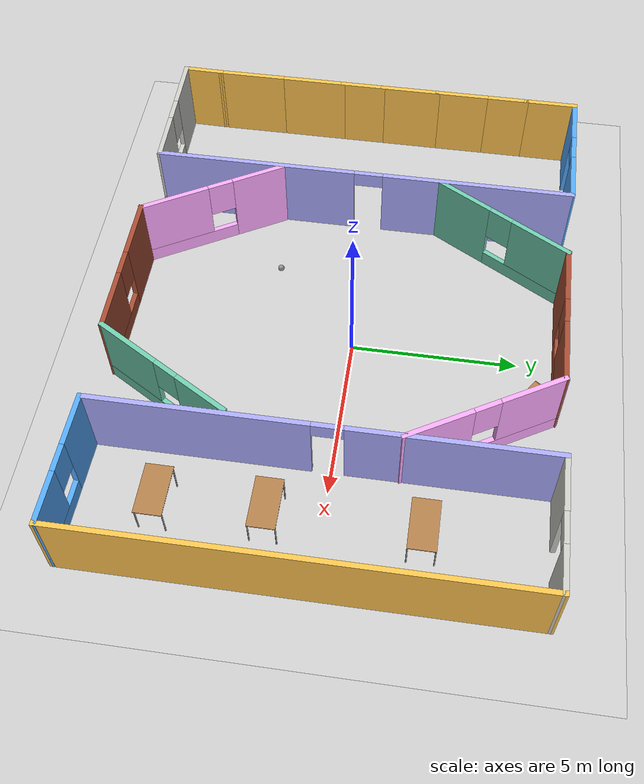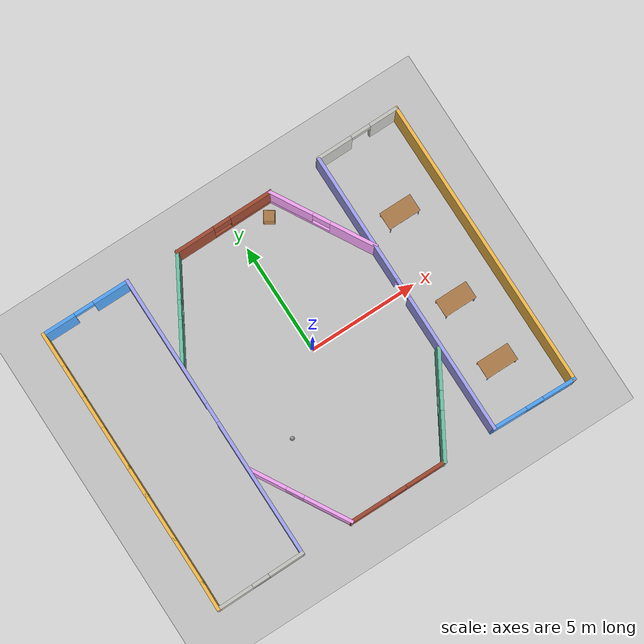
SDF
<sdf version="1.6">
 <world name="default">
  <light name="sun" type="directional">
   <pose>0 0 10 0 -0 0</pose>
   <diffuse>0.8 0.8 0.8 1</diffuse>
   <specular>0.2 0.2 0.2 1</specular>
   <attenuation>
    <range>1000</range>
    <constant>0.9</constant>
    <linear>0.01</linear>
    <quadratic>0.001</quadratic>
   </attenuation>
   <direction>-0.5 0.1 -0.9</direction>
  </light>
  <model name="ground_plane">
   <static>1</static>
   <link name="link">
    <collision name="collision">
     <geometry><plane><normal>0 0 1</normal><size>100 100</size></plane></geometry>
     <surface>
      <contact><collide_bitmask>65535</collide_bitmask></contact>
      <friction><ode><mu>100</mu><mu2>50</mu2></ode></friction>
     </surface>
    </collision>
    <visual name="visual">
     <cast_shadows>0</cast_shadows>
     <geometry><plane><normal>0 0 1</normal><size>100 100</size></plane></geometry>
     <material>
      <script><uri>file://media/materials/scripts/gazebo.material</uri><name>Gazebo/Grey</name></script>
     </material>
    </visual>
   </link>
  </model>
  <gravity>0 0 -9.8</gravity>
  <magnetic_field>6e-06 2.3e-05 -4.2e-05</magnetic_field>
  <atmosphere type="adiabatic"/>
  <physics name="default_physics" default="0" type="ode">
   <max_step_size>0.001</max_step_size>
   <real_time_factor>1</real_time_factor>
   <real_time_update_rate>1000</real_time_update_rate>
  </physics>
  <scene><ambient>0.4 0.4 0.4 1</ambient><background>0.7 0.7 0.7 1</background><shadows>1</shadows></scene>
  <spherical_coordinates>
   <surface_model>EARTH_WGS84</surface_model>
   <latitude_deg>0</latitude_deg>
   <longitude_deg>0</longitude_deg>
   <elevation>0</elevation>
   <heading_deg>0</heading_deg>
  </spherical_coordinates>
  <model name="SLAM_buildilng">
   <pose>-0.438327 -0.340271 0 0 -0 0</pose>
   <link name="Wall_10">
    <collision name="Wall_10_Collision">
     <geometry><box><size>2.25 0.15 2.5</size></box></geometry>
     <pose>0 0 1.25 0 -0 0</pose>
    </collision>
    <visual name="Wall_10_Visual">
     <pose>0 0 1.25 0 -0 0</pose>
     <geometry><box><size>2.25 0.15 2.5</size></box></geometry>
     <material>
      <script><uri>file://media/materials/scripts/gazebo.material</uri><name>Gazebo/Grey</name></script>
      <ambient>1 0.764706 0.305882 1</ambient>
     </material>
     <meta><layer>0</layer></meta>
    </visual>
    <pose>-8.53307 -4.34416 0 0 0 -1.5708</pose>
   </link>
   <link name="Wall_12">
    <collision name="Wall_12_Collision">
     <geometry><box><size>1.36065 0.15 2.5</size></box></geometry>
     <pose>0 0 1.25 0 -0 0</pose>
    </collision>
    <visual name="Wall_12_Visual">
     <pose>0 0 1.25 0 -0 0</pose>
     <geometry><box><size>1.36065 0.15 2.5</size></box></geometry>
     <material>
      <script><uri>file://media/materials/scripts/gazebo.material</uri><name>Gazebo/Grey</name></script>
      <ambient>1 0.764706 0.305882 1</ambient>
     </material>
     <meta><layer>0</layer></meta>
    </visual>
    <pose>-8.5447 -5.99938 0 0 0 -1.59001</pose>
   </link>
   <link name="Wall_14">
    <collision name="Wall_14_Collision">
     <geometry><box><size>13.3606 0.15 2.5</size></box></geometry>
     <pose>0 0 1.25 0 -0 0</pose>
    </collision>
    <visual name="Wall_14_Visual">
     <pose>0 0 1.25 0 -0 0</pose>
     <geometry><box><size>13.3606 0.15 2.5</size></box></geometry>
     <material>
      <script><uri>file://media/materials/scripts/gazebo.material</uri><name>Gazebo/Grey</name></script>
      <ambient>1 0.764706 0.305882 1</ambient>
     </material>
     <meta><layer>0</layer></meta>
    </visual>
    <pose>8.5501 0.000623 0 0 -0 1.5717</pose>
   </link>
   <link name="Wall_17">
    <pose>-4.49653 -0.000985 0 0 0 -1.5708</pose>
    <visual name="Wall_17_Visual_0">
     <pose>-3.62874 0 1.25 0 -0 0</pose>
     <geometry><box><size>5.99253 0.15 2.5</size></box></geometry>
     <material>
      <script><uri>file://media/materials/scripts/gazebo.material</uri><name>Gazebo/Grey</name></script>
      <ambient>0.666667 0.666667 1 1</ambient>
     </material>
     <meta><layer>0</layer></meta>
    </visual>
    <collision name="Wall_17_Collision_0">
     <geometry><box><size>5.99253 0.15 2.5</size></box></geometry>
     <pose>-3.62874 0 1.25 0 -0 0</pose>
    </collision>
    <visual name="Wall_17_Visual_1">
     <pose>3.44626 0 1.25 0 -0 0</pose>
     <geometry><box><size>6.35747 0.15 2.5</size></box></geometry>
     <material>
      <script><uri>file://media/materials/scripts/gazebo.material</uri><name>Gazebo/Grey</name></script>
      <ambient>0.666667 0.666667 1 1</ambient>
     </material>
     <meta><layer>0</layer></meta>
    </visual>
    <collision name="Wall_17_Collision_1">
     <geometry><box><size>6.35747 0.15 2.5</size></box></geometry>
     <pose>3.44626 0 1.25 0 -0 0</pose>
    </collision>
    <visual name="Wall_17_Visual_2">
     <pose>-0.182474 0 2.25 0 -0 0</pose>
     <geometry><box><size>0.9 0.15 0.5</size></box></geometry>
     <material>
      <script><uri>file://media/materials/scripts/gazebo.material</uri><name>Gazebo/Grey</name></script>
      <ambient>0.666667 0.666667 1 1</ambient>
     </material>
     <meta><layer>0</layer></meta>
    </visual>
    <collision name="Wall_17_Collision_2">
     <geometry><box><size>0.9 0.15 0.5</size></box></geometry>
     <pose>-0.182474 0 2.25 0 -0 0</pose>
    </collision>
   </link>
   <link name="Wall_22">
    <pose>4.75524 0.032724 0 0 0 -1.5708</pose>
    <visual name="Wall_22_Visual_0">
     <pose>-3.64677 0 1.25 0 -0 0</pose>
     <geometry><box><size>5.95645 0.15 2.5</size></box></geometry>
     <material>
      <script><uri>file://media/materials/scripts/gazebo.material</uri><name>Gazebo/Grey</name></script>
      <ambient>0.666667 0.666667 1 1</ambient>
     </material>
     <meta><layer>0</layer></meta>
    </visual>
    <collision name="Wall_22_Collision_0">
     <geometry><box><size>5.95645 0.15 2.5</size></box></geometry>
     <pose>-3.64677 0 1.25 0 -0 0</pose>
    </collision>
    <visual name="Wall_22_Visual_1">
     <pose>3.42822 0 1.25 0 -0 0</pose>
     <geometry><box><size>6.39355 0.15 2.5</size></box></geometry>
     <material>
      <script><uri>file://media/materials/scripts/gazebo.material</uri><name>Gazebo/Grey</name></script>
      <ambient>0.666667 0.666667 1 1</ambient>
     </material>
     <meta><layer>0</layer></meta>
    </visual>
    <collision name="Wall_22_Collision_1">
     <geometry><box><size>6.39355 0.15 2.5</size></box></geometry>
     <pose>3.42822 0 1.25 0 -0 0</pose>
    </collision>
    <visual name="Wall_22_Visual_2">
     <pose>-0.21855 0 2.25 0 -0 0</pose>
     <geometry><box><size>0.9 0.15 0.5</size></box></geometry>
     <material>
      <script><uri>file://media/materials/scripts/gazebo.material</uri><name>Gazebo/Grey</name></script>
      <ambient>0.666667 0.666667 1 1</ambient>
     </material>
     <meta><layer>0</layer></meta>
    </visual>
    <collision name="Wall_22_Collision_2">
     <geometry><box><size>0.9 0.15 0.5</size></box></geometry>
     <pose>-0.21855 0 2.25 0 -0 0</pose>
    </collision>
   </link>
   <link name="Wall_29">
    <pose>-3.30649 4.48048 0 0 -0 1.0472</pose>
    <visual name="Wall_29_Visual_0">
     <pose>-1.42297 0 1.25 0 -0 0</pose>
     <geometry><box><size>1.90406 0.15 2.5</size></box></geometry>
     <material>
      <script><uri>file://media/materials/scripts/gazebo.material</uri><name>Gazebo/Grey</name></script>
      <ambient>0.435294 0.796078 0.67451 1</ambient>
     </material>
     <meta><layer>0</layer></meta>
    </visual>
    <collision name="Wall_29_Collision_0">
     <geometry><box><size>1.90406 0.15 2.5</size></box></geometry>
     <pose>-1.42297 0 1.25 0 -0 0</pose>
    </collision>
    <visual name="Wall_29_Visual_1">
     <pose>0.952028 0 0.25 0 -0 0</pose>
     <geometry><box><size>2.84594 0.15 0.5</size></box></geometry>
     <material>
      <script><uri>file://media/materials/scripts/gazebo.material</uri><name>Gazebo/Grey</name></script>
      <ambient>0.435294 0.796078 0.67451 1</ambient>
     </material>
     <meta><layer>0</layer></meta>
    </visual>
    <collision name="Wall_29_Collision_1">
     <geometry><box><size>2.84594 0.15 0.5</size></box></geometry>
     <pose>0.952028 0 0.25 0 -0 0</pose>
    </collision>
    <visual name="Wall_29_Visual_2">
     <pose>1.35203 0 1.5 0 -0 0</pose>
     <geometry><box><size>2.04595 0.15 2</size></box></geometry>
     <material>
      <script><uri>file://media/materials/scripts/gazebo.material</uri><name>Gazebo/Grey</name></script>
      <ambient>0.435294 0.796078 0.67451 1</ambient>
     </material>
     <meta><layer>0</layer></meta>
    </visual>
    <collision name="Wall_29_Collision_2">
     <geometry><box><size>2.04595 0.15 2</size></box></geometry>
     <pose>1.35203 0 1.5 0 -0 0</pose>
    </collision>
    <visual name="Wall_29_Visual_3">
     <pose>-0.070945 0 1.9 0 -0 0</pose>
     <geometry><box><size>0.8 0.15 1.2</size></box></geometry>
     <material>
      <script><uri>file://media/materials/scripts/gazebo.material</uri><name>Gazebo/Grey</name></script>
      <ambient>0.435294 0.796078 0.67451 1</ambient>
     </material>
     <meta><layer>0</layer></meta>
    </visual>
    <collision name="Wall_29_Collision_3">
     <geometry><box><size>0.8 0.15 1.2</size></box></geometry>
     <pose>-0.070945 0 1.9 0 -0 0</pose>
    </collision>
   </link>
   <link name="Wall_3">
    <collision name="Wall_3_Collision">
     <geometry><box><size>1.75 0.15 2.5</size></box></geometry>
     <pose>0 0 1.25 0 -0 0</pose>
    </collision>
    <visual name="Wall_3_Visual">
     <pose>0 0 1.25 0 -0 0</pose>
     <geometry><box><size>1.75 0.15 2.5</size></box></geometry>
     <material>
      <script><uri>file://media/materials/scripts/gazebo.material</uri><name>Gazebo/Grey</name></script>
      <ambient>1 0.764706 0.305882 1</ambient>
     </material>
     <meta><layer>0</layer></meta>
    </visual>
    <pose>-8.53307 5.75584 0 0 0 -1.5708</pose>
   </link>
   <link name="Wall_31">
    <pose>3.55601 4.39549 0 0 -0 2.0944</pose>
    <visual name="Wall_31_Visual_0">
     <pose>-1.42474 0 1.25 0 -0 0</pose>
     <geometry><box><size>2.15052 0.15 2.5</size></box></geometry>
     <material>
      <script><uri>file://media/materials/scripts/gazebo.material</uri><name>Gazebo/Grey</name></script>
      <ambient>1 0.666667 1 1</ambient>
     </material>
     <meta><layer>0</layer></meta>
    </visual>
    <collision name="Wall_31_Collision_0">
     <geometry><box><size>2.15052 0.15 2.5</size></box></geometry>
     <pose>-1.42474 0 1.25 0 -0 0</pose>
    </collision>
    <visual name="Wall_31_Visual_1">
     <pose>1.07526 0 0.25 0 -0 0</pose>
     <geometry><box><size>2.84948 0.15 0.5</size></box></geometry>
     <material>
      <script><uri>file://media/materials/scripts/gazebo.material</uri><name>Gazebo/Grey</name></script>
      <ambient>1 0.666667 1 1</ambient>
     </material>
     <meta><layer>0</layer></meta>
    </visual>
    <collision name="Wall_31_Collision_1">
     <geometry><box><size>2.84948 0.15 0.5</size></box></geometry>
     <pose>1.07526 0 0.25 0 -0 0</pose>
    </collision>
    <visual name="Wall_31_Visual_2">
     <pose>1.47526 0 1.5 0 -0 0</pose>
     <geometry><box><size>2.04948 0.15 2</size></box></geometry>
     <material>
      <script><uri>file://media/materials/scripts/gazebo.material</uri><name>Gazebo/Grey</name></script>
      <ambient>1 0.666667 1 1</ambient>
     </material>
     <meta><layer>0</layer></meta>
    </visual>
    <collision name="Wall_31_Collision_2">
     <geometry><box><size>2.04948 0.15 2</size></box></geometry>
     <pose>1.47526 0 1.5 0 -0 0</pose>
    </collision>
    <visual name="Wall_31_Visual_3">
     <pose>0.050521 0 1.9 0 -0 0</pose>
     <geometry><box><size>0.8 0.15 1.2</size></box></geometry>
     <material>
      <script><uri>file://media/materials/scripts/gazebo.material</uri><name>Gazebo/Grey</name></script>
      <ambient>1 0.666667 1 1</ambient>
     </material>
     <meta><layer>0</layer></meta>
    </visual>
    <collision name="Wall_31_Collision_3">
     <geometry><box><size>0.8 0.15 1.2</size></box></geometry>
     <pose>0.050521 0 1.9 0 -0 0</pose>
    </collision>
   </link>
   <link name="Wall_35">
    <pose>-3.28323 -4.57435 0 0 0 -1.0472</pose>
    <visual name="Wall_35_Visual_0">
     <pose>-1.51625 0 1.25 0 -0 0</pose>
     <geometry><box><size>1.7175 0.15 2.5</size></box></geometry>
     <material>
      <script><uri>file://media/materials/scripts/gazebo.material</uri><name>Gazebo/Grey</name></script>
      <ambient>1 0.666667 1 1</ambient>
     </material>
     <meta><layer>0</layer></meta>
    </visual>
    <collision name="Wall_35_Collision_0">
     <geometry><box><size>1.7175 0.15 2.5</size></box></geometry>
     <pose>-1.51625 0 1.25 0 -0 0</pose>
    </collision>
    <visual name="Wall_35_Visual_1">
     <pose>0.858748 0 0.25 0 -0 0</pose>
     <geometry><box><size>3.0325 0.15 0.5</size></box></geometry>
     <material>
      <script><uri>file://media/materials/scripts/gazebo.material</uri><name>Gazebo/Grey</name></script>
      <ambient>1 0.666667 1 1</ambient>
     </material>
     <meta><layer>0</layer></meta>
    </visual>
    <collision name="Wall_35_Collision_1">
     <geometry><box><size>3.0325 0.15 0.5</size></box></geometry>
     <pose>0.858748 0 0.25 0 -0 0</pose>
    </collision>
    <visual name="Wall_35_Visual_2">
     <pose>1.25875 0 1.5 0 -0 0</pose>
     <geometry><box><size>2.2325 0.15 2</size></box></geometry>
     <material>
      <script><uri>file://media/materials/scripts/gazebo.material</uri><name>Gazebo/Grey</name></script>
      <ambient>1 0.666667 1 1</ambient>
     </material>
     <meta><layer>0</layer></meta>
    </visual>
    <collision name="Wall_35_Collision_2">
     <geometry><box><size>2.2325 0.15 2</size></box></geometry>
     <pose>1.25875 0 1.5 0 -0 0</pose>
    </collision>
    <visual name="Wall_35_Visual_3">
     <pose>-0.257504 0 1.9 0 -0 0</pose>
     <geometry><box><size>0.8 0.15 1.2</size></box></geometry>
     <material>
      <script><uri>file://media/materials/scripts/gazebo.material</uri><name>Gazebo/Grey</name></script>
      <ambient>1 0.666667 1 1</ambient>
     </material>
     <meta><layer>0</layer></meta>
    </visual>
    <collision name="Wall_35_Collision_3">
     <geometry><box><size>0.8 0.15 1.2</size></box></geometry>
     <pose>-0.257504 0 1.9 0 -0 0</pose>
    </collision>
   </link>
   <link name="Wall_38">
    <pose>3.49351 -4.57435 0 0 0 -2.0944</pose>
    <visual name="Wall_38_Visual_0">
     <pose>-1.47162 0 1.25 0 -0 0</pose>
     <geometry><box><size>1.80677 0.15 2.5</size></box></geometry>
     <material>
      <script><uri>file://media/materials/scripts/gazebo.material</uri><name>Gazebo/Grey</name></script>
      <ambient>0.435294 0.796078 0.67451 1</ambient>
     </material>
     <meta><layer>0</layer></meta>
    </visual>
    <collision name="Wall_38_Collision_0">
     <geometry><box><size>1.80677 0.15 2.5</size></box></geometry>
     <pose>-1.47162 0 1.25 0 -0 0</pose>
    </collision>
    <visual name="Wall_38_Visual_1">
     <pose>0.903383 0 0.25 0 -0 0</pose>
     <geometry><box><size>2.94323 0.15 0.5</size></box></geometry>
     <material>
      <script><uri>file://media/materials/scripts/gazebo.material</uri><name>Gazebo/Grey</name></script>
      <ambient>0.435294 0.796078 0.67451 1</ambient>
     </material>
     <meta><layer>0</layer></meta>
    </visual>
    <collision name="Wall_38_Collision_1">
     <geometry><box><size>2.94323 0.15 0.5</size></box></geometry>
     <pose>0.903383 0 0.25 0 -0 0</pose>
    </collision>
    <visual name="Wall_38_Visual_2">
     <pose>1.30338 0 1.5 0 -0 0</pose>
     <geometry><box><size>2.14323 0.15 2</size></box></geometry>
     <material>
      <script><uri>file://media/materials/scripts/gazebo.material</uri><name>Gazebo/Grey</name></script>
      <ambient>0.435294 0.796078 0.67451 1</ambient>
     </material>
     <meta><layer>0</layer></meta>
    </visual>
    <collision name="Wall_38_Collision_2">
     <geometry><box><size>2.14323 0.15 2</size></box></geometry>
     <pose>1.30338 0 1.5 0 -0 0</pose>
    </collision>
    <visual name="Wall_38_Visual_3">
     <pose>-0.168233 0 1.9 0 -0 0</pose>
     <geometry><box><size>0.8 0.15 1.2</size></box></geometry>
     <material>
      <script><uri>file://media/materials/scripts/gazebo.material</uri><name>Gazebo/Grey</name></script>
      <ambient>0.435294 0.796078 0.67451 1</ambient>
     </material>
     <meta><layer>0</layer></meta>
    </visual>
    <collision name="Wall_38_Collision_3">
     <geometry><box><size>0.8 0.15 1.2</size></box></geometry>
     <pose>-0.168233 0 1.9 0 -0 0</pose>
    </collision>
   </link>
   <link name="Wall_4">
    <collision name="Wall_4_Collision">
     <geometry><box><size>1.5 0.15 2.5</size></box></geometry>
     <pose>0 0 1.25 0 -0 0</pose>
    </collision>
    <visual name="Wall_4_Visual">
     <pose>0 0 1.25 0 -0 0</pose>
     <geometry><box><size>1.5 0.15 2.5</size></box></geometry>
     <material>
      <script><uri>file://media/materials/scripts/gazebo.material</uri><name>Gazebo/Grey</name></script>
      <ambient>1 0.764706 0.305882 1</ambient>
     </material>
     <meta><layer>0</layer></meta>
    </visual>
    <pose>-8.53307 4.28084 0 0 0 -1.5708</pose>
   </link>
   <link name="Wall_41">
    <pose>0.093507 6.48397 0 0 -0 0.005169</pose>
    <visual name="Wall_41_Visual_0">
     <pose>-1.40673 0 1.25 0 -0 0</pose>
     <geometry><box><size>1.8366 0.15 2.5</size></box></geometry>
     <material>
      <script><uri>file://media/materials/scripts/gazebo.material</uri><name>Gazebo/Bricks</name></script>
      <ambient>1 1 1 1</ambient>
     </material>
     <meta><layer>0</layer></meta>
    </visual>
    <collision name="Wall_41_Collision_0">
     <geometry><box><size>1.8366 0.15 2.5</size></box></geometry>
     <pose>-1.40673 0 1.25 0 -0 0</pose>
    </collision>
    <visual name="Wall_41_Visual_1">
     <pose>0.918299 0 0.25 0 -0 0</pose>
     <geometry><box><size>2.81346 0.15 0.5</size></box></geometry>
     <material>
      <script><uri>file://media/materials/scripts/gazebo.material</uri><name>Gazebo/Bricks</name></script>
      <ambient>1 1 1 1</ambient>
     </material>
     <meta><layer>0</layer></meta>
    </visual>
    <collision name="Wall_41_Collision_1">
     <geometry><box><size>2.81346 0.15 0.5</size></box></geometry>
     <pose>0.918299 0 0.25 0 -0 0</pose>
    </collision>
    <visual name="Wall_41_Visual_2">
     <pose>1.3183 0 1.5 0 -0 0</pose>
     <geometry><box><size>2.01346 0.15 2</size></box></geometry>
     <material>
      <script><uri>file://media/materials/scripts/gazebo.material</uri><name>Gazebo/Bricks</name></script>
      <ambient>1 1 1 1</ambient>
     </material>
     <meta><layer>0</layer></meta>
    </visual>
    <collision name="Wall_41_Collision_2">
     <geometry><box><size>2.01346 0.15 2</size></box></geometry>
     <pose>1.3183 0 1.5 0 -0 0</pose>
    </collision>
    <visual name="Wall_41_Visual_3">
     <pose>-0.088431 0 1.9 0 -0 0</pose>
     <geometry><box><size>0.8 0.15 1.2</size></box></geometry>
     <material>
      <script><uri>file://media/materials/scripts/gazebo.material</uri><name>Gazebo/Bricks</name></script>
      <ambient>1 1 1 1</ambient>
     </material>
     <meta><layer>0</layer></meta>
    </visual>
    <collision name="Wall_41_Collision_3">
     <geometry><box><size>0.8 0.15 1.2</size></box></geometry>
     <pose>-0.088431 0 1.9 0 -0 0</pose>
    </collision>
   </link>
   <link name="Wall_43">
    <pose>-6.5148 6.55243 0 0 0 -0.00169</pose>
    <visual name="Wall_43_Visual_0">
     <pose>-1.30729 0 1.25 0 -0 0</pose>
     <geometry><box><size>1.57196 0.15 2.5</size></box></geometry>
     <material>
      <script><uri>file://media/materials/scripts/gazebo.material</uri><name>Gazebo/Grey</name></script>
      <ambient>0.333333 0.666667 1 1</ambient>
     </material>
     <meta><layer>0</layer></meta>
    </visual>
    <collision name="Wall_43_Collision_0">
     <geometry><box><size>1.57196 0.15 2.5</size></box></geometry>
     <pose>-1.30729 0 1.25 0 -0 0</pose>
    </collision>
    <visual name="Wall_43_Visual_1">
     <pose>1.23598 0 1.25 0 -0 0</pose>
     <geometry><box><size>1.71458 0.15 2.5</size></box></geometry>
     <material>
      <script><uri>file://media/materials/scripts/gazebo.material</uri><name>Gazebo/Grey</name></script>
      <ambient>0.333333 0.666667 1 1</ambient>
     </material>
     <meta><layer>0</layer></meta>
    </visual>
    <collision name="Wall_43_Collision_1">
     <geometry><box><size>1.71458 0.15 2.5</size></box></geometry>
     <pose>1.23598 0 1.25 0 -0 0</pose>
    </collision>
    <visual name="Wall_43_Visual_2">
     <pose>-0.07131 0 2.25 0 -0 0</pose>
     <geometry><box><size>0.9 0.15 0.5</size></box></geometry>
     <material>
      <script><uri>file://media/materials/scripts/gazebo.material</uri><name>Gazebo/Grey</name></script>
      <ambient>0.333333 0.666667 1 1</ambient>
     </material>
     <meta><layer>0</layer></meta>
    </visual>
    <collision name="Wall_43_Collision_2">
     <geometry><box><size>0.9 0.15 0.5</size></box></geometry>
     <pose>-0.07131 0 2.25 0 -0 0</pose>
    </collision>
   </link>
   <link name="Wall_45">
    <pose>6.64969 6.59428 0 0 -0 0.0061</pose>
    <visual name="Wall_45_Visual_0">
     <pose>-1.13516 0 1.25 0 -0 0</pose>
     <geometry><box><size>1.66866 0.15 2.5</size></box></geometry>
     <material>
      <script><uri>file://media/materials/scripts/gazebo.material</uri><name>Gazebo/CeilingTiled</name></script>
      <ambient>1 1 1 1</ambient>
     </material>
     <meta><layer>0</layer></meta>
    </visual>
    <collision name="Wall_45_Collision_0">
     <geometry><box><size>1.66866 0.15 2.5</size></box></geometry>
     <pose>-1.13516 0 1.25 0 -0 0</pose>
    </collision>
    <visual name="Wall_45_Visual_1">
     <pose>1.28433 0 1.25 0 -0 0</pose>
     <geometry><box><size>1.37031 0.15 2.5</size></box></geometry>
     <material>
      <script><uri>file://media/materials/scripts/gazebo.material</uri><name>Gazebo/CeilingTiled</name></script>
      <ambient>1 1 1 1</ambient>
     </material>
     <meta><layer>0</layer></meta>
    </visual>
    <collision name="Wall_45_Collision_1">
     <geometry><box><size>1.37031 0.15 2.5</size></box></geometry>
     <pose>1.28433 0 1.25 0 -0 0</pose>
    </collision>
    <visual name="Wall_45_Visual_2">
     <pose>0.149173 0 2.25 0 -0 0</pose>
     <geometry><box><size>0.9 0.15 0.5</size></box></geometry>
     <material>
      <script><uri>file://media/materials/scripts/gazebo.material</uri><name>Gazebo/CeilingTiled</name></script>
      <ambient>1 1 1 1</ambient>
     </material>
     <meta><layer>0</layer></meta>
    </visual>
    <collision name="Wall_45_Collision_2">
     <geometry><box><size>0.9 0.15 0.5</size></box></geometry>
     <pose>0.149173 0 2.25 0 -0 0</pose>
    </collision>
   </link>
   <link name="Wall_47">
    <pose>0.105138 -6.5662 0 0 -0 0</pose>
    <visual name="Wall_47_Visual_0">
     <pose>-1.36608 0 1.25 0 -0 0</pose>
     <geometry><box><size>1.89457 0.15 2.5</size></box></geometry>
     <material>
      <script><uri>file://media/materials/scripts/gazebo.material</uri><name>Gazebo/Bricks</name></script>
      <ambient>1 1 1 1</ambient>
     </material>
     <meta><layer>0</layer></meta>
    </visual>
    <collision name="Wall_47_Collision_0">
     <geometry><box><size>1.89457 0.15 2.5</size></box></geometry>
     <pose>-1.36608 0 1.25 0 -0 0</pose>
    </collision>
    <visual name="Wall_47_Visual_1">
     <pose>0.947284 0 0.25 0 -0 0</pose>
     <geometry><box><size>2.73217 0.15 0.5</size></box></geometry>
     <material>
      <script><uri>file://media/materials/scripts/gazebo.material</uri><name>Gazebo/Bricks</name></script>
      <ambient>1 1 1 1</ambient>
     </material>
     <meta><layer>0</layer></meta>
    </visual>
    <collision name="Wall_47_Collision_1">
     <geometry><box><size>2.73217 0.15 0.5</size></box></geometry>
     <pose>0.947284 0 0.25 0 -0 0</pose>
    </collision>
    <visual name="Wall_47_Visual_2">
     <pose>1.34728 0 1.5 0 -0 0</pose>
     <geometry><box><size>1.93217 0.15 2</size></box></geometry>
     <material>
      <script><uri>file://media/materials/scripts/gazebo.material</uri><name>Gazebo/Bricks</name></script>
      <ambient>1 1 1 1</ambient>
     </material>
     <meta><layer>0</layer></meta>
    </visual>
    <collision name="Wall_47_Collision_2">
     <geometry><box><size>1.93217 0.15 2</size></box></geometry>
     <pose>1.34728 0 1.5 0 -0 0</pose>
    </collision>
    <visual name="Wall_47_Visual_3">
     <pose>-0.018801 0 1.9 0 -0 0</pose>
     <geometry><box><size>0.8 0.15 1.2</size></box></geometry>
     <material>
      <script><uri>file://media/materials/scripts/gazebo.material</uri><name>Gazebo/Bricks</name></script>
      <ambient>1 1 1 1</ambient>
     </material>
     <meta><layer>0</layer></meta>
    </visual>
    <collision name="Wall_47_Collision_3">
     <geometry><box><size>0.8 0.15 1.2</size></box></geometry>
     <pose>-0.018801 0 1.9 0 -0 0</pose>
    </collision>
   </link>
   <link name="Wall_49">
    <pose>-6.52643 -6.57779 0 0 -0 0.013203</pose>
    <visual name="Wall_49_Visual_0">
     <pose>-1.24125 0 1.25 0 -0 0</pose>
     <geometry><box><size>1.72766 0.15 2.5</size></box></geometry>
     <material>
      <script><uri>file://media/materials/scripts/gazebo.material</uri><name>Gazebo/CeilingTiled</name></script>
      <ambient>1 1 1 1</ambient>
     </material>
     <meta><layer>0</layer></meta>
    </visual>
    <collision name="Wall_49_Collision_0">
     <geometry><box><size>1.72766 0.15 2.5</size></box></geometry>
     <pose>-1.24125 0 1.25 0 -0 0</pose>
    </collision>
    <visual name="Wall_49_Visual_1">
     <pose>0.863832 0 0.25 0 -0 0</pose>
     <geometry><box><size>2.48249 0.15 0.5</size></box></geometry>
     <material>
      <script><uri>file://media/materials/scripts/gazebo.material</uri><name>Gazebo/CeilingTiled</name></script>
      <ambient>1 1 1 1</ambient>
     </material>
     <meta><layer>0</layer></meta>
    </visual>
    <collision name="Wall_49_Collision_1">
     <geometry><box><size>2.48249 0.15 0.5</size></box></geometry>
     <pose>0.863832 0 0.25 0 -0 0</pose>
    </collision>
    <visual name="Wall_49_Visual_2">
     <pose>1.26383 0 1.5 0 -0 0</pose>
     <geometry><box><size>1.68249 0.15 2</size></box></geometry>
     <material>
      <script><uri>file://media/materials/scripts/gazebo.material</uri><name>Gazebo/CeilingTiled</name></script>
      <ambient>1 1 1 1</ambient>
     </material>
     <meta><layer>0</layer></meta>
    </visual>
    <collision name="Wall_49_Collision_2">
     <geometry><box><size>1.68249 0.15 2</size></box></geometry>
     <pose>1.26383 0 1.5 0 -0 0</pose>
    </collision>
    <visual name="Wall_49_Visual_3">
     <pose>0.022585 0 1.9 0 -0 0</pose>
     <geometry><box><size>0.8 0.15 1.2</size></box></geometry>
     <material>
      <script><uri>file://media/materials/scripts/gazebo.material</uri><name>Gazebo/CeilingTiled</name></script>
      <ambient>1 1 1 1</ambient>
     </material>
     <meta><layer>0</layer></meta>
    </visual>
    <collision name="Wall_49_Collision_3">
     <geometry><box><size>0.8 0.15 1.2</size></box></geometry>
     <pose>0.022585 0 1.9 0 -0 0</pose>
    </collision>
   </link>
   <link name="Wall_5">
    <collision name="Wall_5_Collision">
     <geometry><box><size>1.75 0.15 2.5</size></box></geometry>
     <pose>0 0 1.25 0 -0 0</pose>
    </collision>
    <visual name="Wall_5_Visual">
     <pose>0 0 1.25 0 -0 0</pose>
     <geometry><box><size>1.75 0.15 2.5</size></box></geometry>
     <material>
      <script><uri>file://media/materials/scripts/gazebo.material</uri><name>Gazebo/Grey</name></script>
      <ambient>1 0.764706 0.305882 1</ambient>
     </material>
     <meta><layer>0</layer></meta>
    </visual>
    <pose>-8.53307 2.80584 0 0 0 -1.5708</pose>
   </link>
   <link name="Wall_51">
    <pose>6.65565 -6.56093 0 0 0 -0.022969</pose>
    <visual name="Wall_51_Visual_0">
     <pose>-1.17717 0 1.25 0 -0 0</pose>
     <geometry><box><size>1.59747 0.15 2.5</size></box></geometry>
     <material>
      <script><uri>file://media/materials/scripts/gazebo.material</uri><name>Gazebo/Grey</name></script>
      <ambient>0.333333 0.666667 1 1</ambient>
     </material>
     <meta><layer>0</layer></meta>
    </visual>
    <collision name="Wall_51_Collision_0">
     <geometry><box><size>1.59747 0.15 2.5</size></box></geometry>
     <pose>-1.17717 0 1.25 0 -0 0</pose>
    </collision>
    <visual name="Wall_51_Visual_1">
     <pose>0.798737 0 0.25 0 -0 0</pose>
     <geometry><box><size>2.35435 0.15 0.5</size></box></geometry>
     <material>
      <script><uri>file://media/materials/scripts/gazebo.material</uri><name>Gazebo/Grey</name></script>
      <ambient>0.333333 0.666667 1 1</ambient>
     </material>
     <meta><layer>0</layer></meta>
    </visual>
    <collision name="Wall_51_Collision_1">
     <geometry><box><size>2.35435 0.15 0.5</size></box></geometry>
     <pose>0.798737 0 0.25 0 -0 0</pose>
    </collision>
    <visual name="Wall_51_Visual_2">
     <pose>1.19874 0 1.5 0 -0 0</pose>
     <geometry><box><size>1.55435 0.15 2</size></box></geometry>
     <material>
      <script><uri>file://media/materials/scripts/gazebo.material</uri><name>Gazebo/Grey</name></script>
      <ambient>0.333333 0.666667 1 1</ambient>
     </material>
     <meta><layer>0</layer></meta>
    </visual>
    <collision name="Wall_51_Collision_2">
     <geometry><box><size>1.55435 0.15 2</size></box></geometry>
     <pose>1.19874 0 1.5 0 -0 0</pose>
    </collision>
    <visual name="Wall_51_Visual_3">
     <pose>0.021564 0 1.9 0 -0 0</pose>
     <geometry><box><size>0.8 0.15 1.2</size></box></geometry>
     <material>
      <script><uri>file://media/materials/scripts/gazebo.material</uri><name>Gazebo/Grey</name></script>
      <ambient>0.333333 0.666667 1 1</ambient>
     </material>
     <meta><layer>0</layer></meta>
    </visual>
    <collision name="Wall_51_Collision_3">
     <geometry><box><size>0.8 0.15 1.2</size></box></geometry>
     <pose>0.021564 0 1.9 0 -0 0</pose>
    </collision>
   </link>
   <link name="Wall_7">
    <collision name="Wall_7_Collision">
     <geometry><box><size>2 0.15 2.5</size></box></geometry>
     <pose>0 0 1.25 0 -0 0</pose>
    </collision>
    <visual name="Wall_7_Visual">
     <pose>0 0 1.25 0 -0 0</pose>
     <geometry><box><size>2 0.15 2.5</size></box></geometry>
     <material>
      <script><uri>file://media/materials/scripts/gazebo.material</uri><name>Gazebo/Grey</name></script>
      <ambient>1 0.764706 0.305882 1</ambient>
     </material>
     <meta><layer>0</layer></meta>
    </visual>
    <pose>-8.53307 1.08084 0 0 0 -1.5708</pose>
   </link>
   <link name="Wall_8">
    <collision name="Wall_8_Collision">
     <geometry><box><size>1.5 0.15 2.5</size></box></geometry>
     <pose>0 0 1.25 0 -0 0</pose>
    </collision>
    <visual name="Wall_8_Visual">
     <pose>0 0 1.25 0 -0 0</pose>
     <geometry><box><size>1.5 0.15 2.5</size></box></geometry>
     <material>
      <script><uri>file://media/materials/scripts/gazebo.material</uri><name>Gazebo/Grey</name></script>
      <ambient>1 0.764706 0.305882 1</ambient>
     </material>
     <meta><layer>0</layer></meta>
    </visual>
    <pose>-8.53307 -0.519163 0 0 0 -1.5708</pose>
   </link>
   <link name="Wall_9">
    <collision name="Wall_9_Collision">
     <geometry><box><size>2.25 0.15 2.5</size></box></geometry>
     <pose>0 0 1.25 0 -0 0</pose>
    </collision>
    <visual name="Wall_9_Visual">
     <pose>0 0 1.25 0 -0 0</pose>
     <geometry><box><size>2.25 0.15 2.5</size></box></geometry>
     <material>
      <script><uri>file://media/materials/scripts/gazebo.material</uri><name>Gazebo/Grey</name></script>
      <ambient>1 0.764706 0.305882 1</ambient>
     </material>
     <meta><layer>0</layer></meta>
    </visual>
    <pose>-8.53307 -2.24416 0 0 0 -1.5708</pose>
   </link>
   <static>1</static>
  </model>
  <model name="cabinet">
   <static>1</static>
   <link name="cabinet_bottom_plate">
    <inertial>
     <pose>0 0 -1 0 -0 0</pose>
     <inertia><ixx>2.05</ixx><ixy>0</ixy><ixz>0</ixz><iyy>2.05</iyy><iyz>0</iyz><izz>2.05</izz></inertia>
     <mass>25</mass>
    </inertial>
    <collision name="cabinet_bottom_plate_geom">
     <pose>0 0 0.01 0 -0 0</pose>
     <geometry><box><size>0.45 0.45 0.02</size></box></geometry>
    </collision>
    <visual name="cabinet_bottom_plate_geom_visual">
     <pose>0 0 0.01 0 -0 0</pose>
     <geometry><box><size>0.45 0.45 0.02</size></box></geometry>
     <material>
      <script><uri>file://media/materials/scripts/gazebo.material</uri><name>Gazebo/Wood</name></script>
     </material>
    </visual>
    <collision name="cabinet_bottom_plate_geom_cabinet_back_plate">
     <pose>0.235 0 0.51 0 -0 0</pose>
     <geometry><box><size>0.02 0.45 1.02</size></box></geometry>
    </collision>
    <visual name="cabinet_bottom_plate_geom_cabinet_back_plate_visual">
     <pose>0.235 0 0.51 0 -0 0</pose>
     <geometry><box><size>0.02 0.45 1.02</size></box></geometry>
     <material>
      <script><uri>file://media/materials/scripts/gazebo.material</uri><name>Gazebo/Wood</name></script>
     </material>
    </visual>
    <collision name="cabinet_bottom_plate_geom_cabinet_left_plate">
     <pose>0 0.235 0.51 0 -0 0</pose>
     <geometry><box><size>0.45 0.02 1.02</size></box></geometry>
    </collision>
    <visual name="cabinet_bottom_plate_geom_cabinet_left_plate_visual">
     <pose>0 0.235 0.51 0 -0 0</pose>
     <geometry><box><size>0.45 0.02 1.02</size></box></geometry>
     <material>
      <script><uri>file://media/materials/scripts/gazebo.material</uri><name>Gazebo/Wood</name></script>
     </material>
    </visual>
    <collision name="cabinet_bottom_plate_geom_cabinet_middle_plate">
     <pose>0 0 0.51 0 -0 0</pose>
     <geometry><box><size>0.45 0.45 0.02</size></box></geometry>
    </collision>
    <visual name="cabinet_bottom_plate_geom_cabinet_middle_plate_visual">
     <pose>0 0 0.51 0 -0 0</pose>
     <geometry><box><size>0.45 0.45 0.02</size></box></geometry>
     <material>
      <script><uri>file://media/materials/scripts/gazebo.material</uri><name>Gazebo/Wood</name></script>
     </material>
    </visual>
    <collision name="cabinet_bottom_plate_geom_cabinet_right_plate">
     <pose>0 -0.235 0.51 0 -0 0</pose>
     <geometry><box><size>0.45 0.02 1.02</size></box></geometry>
    </collision>
    <visual name="cabinet_bottom_plate_geom_cabinet_right_plate_visual">
     <pose>0 -0.235 0.51 0 -0 0</pose>
     <geometry><box><size>0.45 0.02 1.02</size></box></geometry>
     <material>
      <script><uri>file://media/materials/scripts/gazebo.material</uri><name>Gazebo/Wood</name></script>
     </material>
    </visual>
    <collision name="cabinet_bottom_plate_geom_cabinet_top_plate">
     <pose>0 0 1.01 0 -0 0</pose>
     <geometry><box><size>0.45 0.45 0.02</size></box></geometry>
    </collision>
    <visual name="cabinet_bottom_plate_geom_cabinet_top_plate_visual">
     <pose>0 0 1.01 0 -0 0</pose>
     <geometry><box><size>0.45 0.45 0.02</size></box></geometry>
     <material>
      <script><uri>file://media/materials/scripts/gazebo.material</uri><name>Gazebo/Wood</name></script>
     </material>
    </visual>
   </link>
   <pose>1.44688 5.53861 0 0 -0 0.986537</pose>
  </model>
  <model name="table">
   <static>1</static>
   <link name="link">
    <collision name="surface">
     <pose>0 0 1 0 -0 0</pose>
     <geometry><box><size>1.5 0.8 0.03</size></box></geometry>
     <surface><friction><ode><mu>0.6</mu><mu2>0.6</mu2></ode></friction></surface>
    </collision>
    <visual name="visual1">
     <pose>0 0 1 0 -0 0</pose>
     <geometry><box><size>1.5 0.8 0.03</size></box></geometry>
     <material>
      <script><uri>file://media/materials/scripts/gazebo.material</uri><name>Gazebo/Wood</name></script>
     </material>
    </visual>
    <collision name="front_left_leg">
     <pose>0.68 0.38 0.5 0 -0 0</pose>
     <geometry><cylinder><radius>0.02</radius><length>1</length></cylinder></geometry>
    </collision>
    <visual name="front_left_leg">
     <pose>0.68 0.38 0.5 0 -0 0</pose>
     <geometry><cylinder><radius>0.02</radius><length>1</length></cylinder></geometry>
     <material>
      <script><uri>file://media/materials/scripts/gazebo.material</uri><name>Gazebo/Grey</name></script>
     </material>
    </visual>
    <collision name="front_right_leg">
     <pose>0.68 -0.38 0.5 0 -0 0</pose>
     <geometry><cylinder><radius>0.02</radius><length>1</length></cylinder></geometry>
    </collision>
    <visual name="front_right_leg">
     <pose>0.68 -0.38 0.5 0 -0 0</pose>
     <geometry><cylinder><radius>0.02</radius><length>1</length></cylinder></geometry>
     <material>
      <script><uri>file://media/materials/scripts/gazebo.material</uri><name>Gazebo/Grey</name></script>
     </material>
    </visual>
    <collision name="back_right_leg">
     <pose>-0.68 -0.38 0.5 0 -0 0</pose>
     <geometry><cylinder><radius>0.02</radius><length>1</length></cylinder></geometry>
    </collision>
    <visual name="back_right_leg">
     <pose>-0.68 -0.38 0.5 0 -0 0</pose>
     <geometry><cylinder><radius>0.02</radius><length>1</length></cylinder></geometry>
     <material>
      <script><uri>file://media/materials/scripts/gazebo.material</uri><name>Gazebo/Grey</name></script>
     </material>
    </visual>
    <collision name="back_left_leg">
     <pose>-0.68 0.38 0.5 0 -0 0</pose>
     <geometry><cylinder><radius>0.02</radius><length>1</length></cylinder></geometry>
    </collision>
    <visual name="back_left_leg">
     <pose>-0.68 0.38 0.5 0 -0 0</pose>
     <geometry><cylinder><radius>0.02</radius><length>1</length></cylinder></geometry>
     <material>
      <script><uri>file://media/materials/scripts/gazebo.material</uri><name>Gazebo/Grey</name></script>
     </material>
    </visual>
   </link>
   <pose>6.06037 -4.58432 0 0 -0 0</pose>
  </model>
  <model name="table_0">
   <static>1</static>
   <link name="link">
    <collision name="surface">
     <pose>0 0 1 0 -0 0</pose>
     <geometry><box><size>1.5 0.8 0.03</size></box></geometry>
     <surface><friction><ode><mu>0.6</mu><mu2>0.6</mu2></ode></friction></surface>
    </collision>
    <visual name="visual1">
     <pose>0 0 1 0 -0 0</pose>
     <geometry><box><size>1.5 0.8 0.03</size></box></geometry>
     <material>
      <script><uri>file://media/materials/scripts/gazebo.material</uri><name>Gazebo/Wood</name></script>
     </material>
    </visual>
    <collision name="front_left_leg">
     <pose>0.68 0.38 0.5 0 -0 0</pose>
     <geometry><cylinder><radius>0.02</radius><length>1</length></cylinder></geometry>
    </collision>
    <visual name="front_left_leg">
     <pose>0.68 0.38 0.5 0 -0 0</pose>
     <geometry><cylinder><radius>0.02</radius><length>1</length></cylinder></geometry>
     <material>
      <script><uri>file://media/materials/scripts/gazebo.material</uri><name>Gazebo/Grey</name></script>
     </material>
    </visual>
    <collision name="front_right_leg">
     <pose>0.68 -0.38 0.5 0 -0 0</pose>
     <geometry><cylinder><radius>0.02</radius><length>1</length></cylinder></geometry>
    </collision>
    <visual name="front_right_leg">
     <pose>0.68 -0.38 0.5 0 -0 0</pose>
     <geometry><cylinder><radius>0.02</radius><length>1</length></cylinder></geometry>
     <material>
      <script><uri>file://media/materials/scripts/gazebo.material</uri><name>Gazebo/Grey</name></script>
     </material>
    </visual>
    <collision name="back_right_leg">
     <pose>-0.68 -0.38 0.5 0 -0 0</pose>
     <geometry><cylinder><radius>0.02</radius><length>1</length></cylinder></geometry>
    </collision>
    <visual name="back_right_leg">
     <pose>-0.68 -0.38 0.5 0 -0 0</pose>
     <geometry><cylinder><radius>0.02</radius><length>1</length></cylinder></geometry>
     <material>
      <script><uri>file://media/materials/scripts/gazebo.material</uri><name>Gazebo/Grey</name></script>
     </material>
    </visual>
    <collision name="back_left_leg">
     <pose>-0.68 0.38 0.5 0 -0 0</pose>
     <geometry><cylinder><radius>0.02</radius><length>1</length></cylinder></geometry>
    </collision>
    <visual name="back_left_leg">
     <pose>-0.68 0.38 0.5 0 -0 0</pose>
     <geometry><cylinder><radius>0.02</radius><length>1</length></cylinder></geometry>
     <material>
      <script><uri>file://media/materials/scripts/gazebo.material</uri><name>Gazebo/Grey</name></script>
     </material>
    </visual>
   </link>
   <pose>6.02129 -1.5231 0 0 -0 0</pose>
  </model>
  <model name="table_1">
   <static>1</static>
   <link name="link">
    <collision name="surface">
     <pose>0 0 1 0 -0 0</pose>
     <geometry><box><size>1.5 0.8 0.03</size></box></geometry>
     <surface><friction><ode><mu>0.6</mu><mu2>0.6</mu2></ode></friction></surface>
    </collision>
    <visual name="visual1">
     <pose>0 0 1 0 -0 0</pose>
     <geometry><box><size>1.5 0.8 0.03</size></box></geometry>
     <material>
      <script><uri>file://media/materials/scripts/gazebo.material</uri><name>Gazebo/Wood</name></script>
     </material>
    </visual>
    <collision name="front_left_leg">
     <pose>0.68 0.38 0.5 0 -0 0</pose>
     <geometry><cylinder><radius>0.02</radius><length>1</length></cylinder></geometry>
    </collision>
    <visual name="front_left_leg">
     <pose>0.68 0.38 0.5 0 -0 0</pose>
     <geometry><cylinder><radius>0.02</radius><length>1</length></cylinder></geometry>
     <material>
      <script><uri>file://media/materials/scripts/gazebo.material</uri><name>Gazebo/Grey</name></script>
     </material>
    </visual>
    <collision name="front_right_leg">
     <pose>0.68 -0.38 0.5 0 -0 0</pose>
     <geometry><cylinder><radius>0.02</radius><length>1</length></cylinder></geometry>
    </collision>
    <visual name="front_right_leg">
     <pose>0.68 -0.38 0.5 0 -0 0</pose>
     <geometry><cylinder><radius>0.02</radius><length>1</length></cylinder></geometry>
     <material>
      <script><uri>file://media/materials/scripts/gazebo.material</uri><name>Gazebo/Grey</name></script>
     </material>
    </visual>
    <collision name="back_right_leg">
     <pose>-0.68 -0.38 0.5 0 -0 0</pose>
     <geometry><cylinder><radius>0.02</radius><length>1</length></cylinder></geometry>
    </collision>
    <visual name="back_right_leg">
     <pose>-0.68 -0.38 0.5 0 -0 0</pose>
     <geometry><cylinder><radius>0.02</radius><length>1</length></cylinder></geometry>
     <material>
      <script><uri>file://media/materials/scripts/gazebo.material</uri><name>Gazebo/Grey</name></script>
     </material>
    </visual>
    <collision name="back_left_leg">
     <pose>-0.68 0.38 0.5 0 -0 0</pose>
     <geometry><cylinder><radius>0.02</radius><length>1</length></cylinder></geometry>
    </collision>
    <visual name="back_left_leg">
     <pose>-0.68 0.38 0.5 0 -0 0</pose>
     <geometry><cylinder><radius>0.02</radius><length>1</length></cylinder></geometry>
     <material>
      <script><uri>file://media/materials/scripts/gazebo.material</uri><name>Gazebo/Grey</name></script>
     </material>
    </visual>
   </link>
   <pose>6.05732 2.75187 0 0 -0 0</pose>
  </model>
  <model name="white_ball">
   <link name="link_0">
    <inertial>
     <mass>1</mass>
     <inertia><ixx>0.1</ixx><ixy>0</ixy><ixz>0</ixz><iyy>0.1</iyy><iyz>0</iyz><izz>0.1</izz></inertia>
    </inertial>
    <visual name="visual">
     <geometry><sphere><radius>0.1</radius></sphere></geometry>
     <material>
      <lighting>1</lighting>
      <script><uri>file://media/materials/scripts/gazebo.material</uri><name>Gazebo/Grey</name></script>
      <shader type="pixel"><normal_map>__default__</normal_map></shader>
      <ambient>1 1 1 1</ambient>
      <diffuse>1 1 1 1</diffuse>
      <specular>1 1 1 1</specular>
      <emissive>1 1 1 1</emissive>
     </material>
    </visual>
    <collision name="collision">
     <geometry><sphere><radius>0.1</radius></sphere></geometry>
     <surface>
      <friction>
       <ode><mu>1</mu><mu2>1</mu2><fdir1>0 0 0</fdir1><slip1>0</slip1><slip2>0</slip2></ode>
       <torsional>
        <coefficient>1</coefficient>
        <patch_radius>0</patch_radius>
        <surface_radius>0</surface_radius>
        <use_patch_radius>1</use_patch_radius>
        <ode><slip>0</slip></ode>
       </torsional>
      </friction>
      <bounce><restitution_coefficient>0</restitution_coefficient><threshold>1e+06</threshold></bounce>
      <contact>
       <collide_without_contact>0</collide_without_contact>
       <collide_without_contact_bitmask>1</collide_without_contact_bitmask>
       <collide_bitmask>1</collide_bitmask>
       <ode>
        <soft_cfm>0</soft_cfm>
        <soft_erp>0.2</soft_erp>
        <kp>1e+13</kp>
        <kd>1</kd>
        <max_vel>0.01</max_vel>
        <min_depth>0</min_depth>
       </ode>
       <bullet>
        <split_impulse>1</split_impulse>
        <split_impulse_penetration_threshold>-0.01</split_impulse_penetration_threshold>
        <soft_cfm>0</soft_cfm>
        <soft_erp>0.2</soft_erp>
        <kp>1e+13</kp>
        <kd>1</kd>
       </bullet>
      </contact>
     </surface>
    </collision>
   </link>
   <static>0</static>
   <pose>-2.6962 -2.65515 0.1 0 -0 0</pose>
  </model>
 </world>
</sdf>
